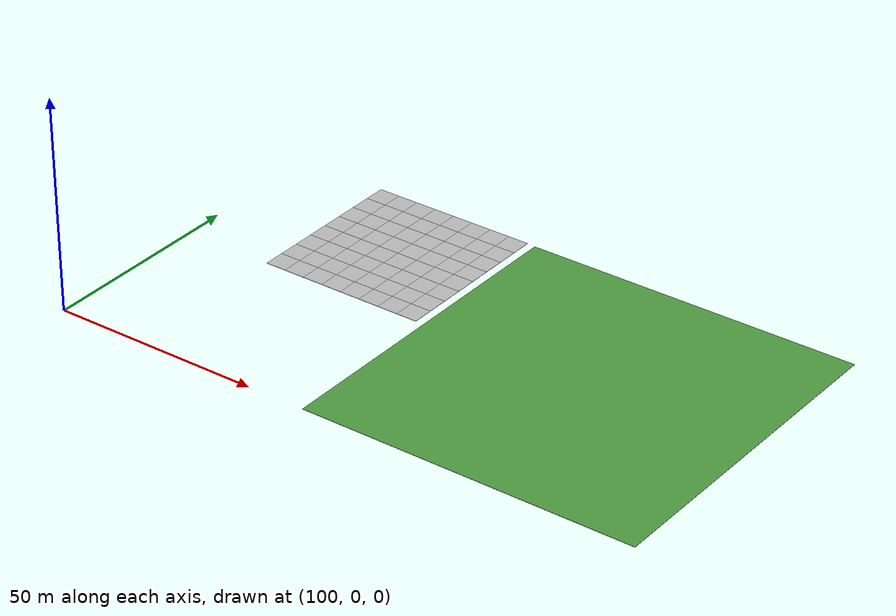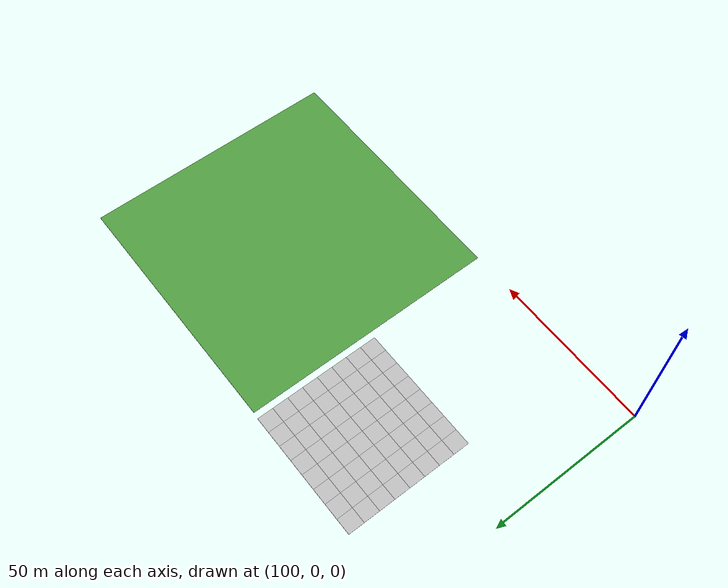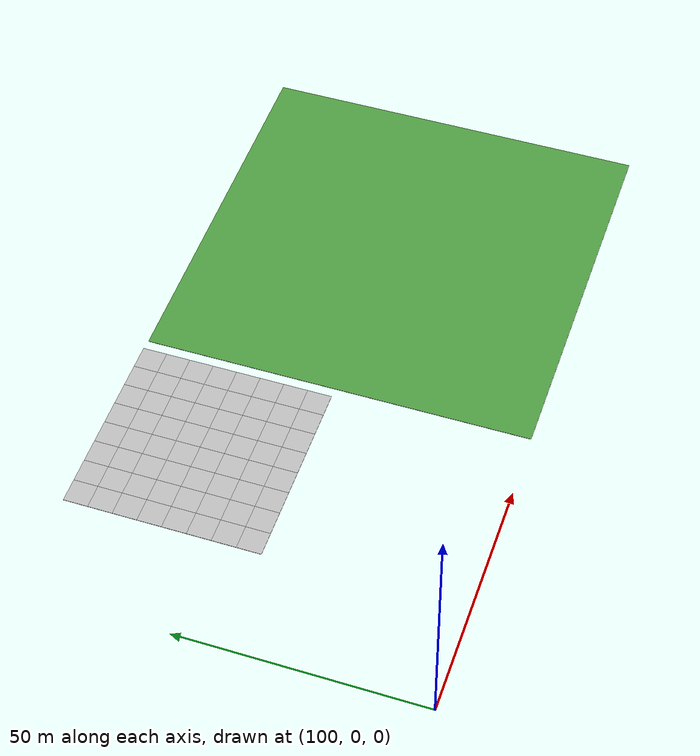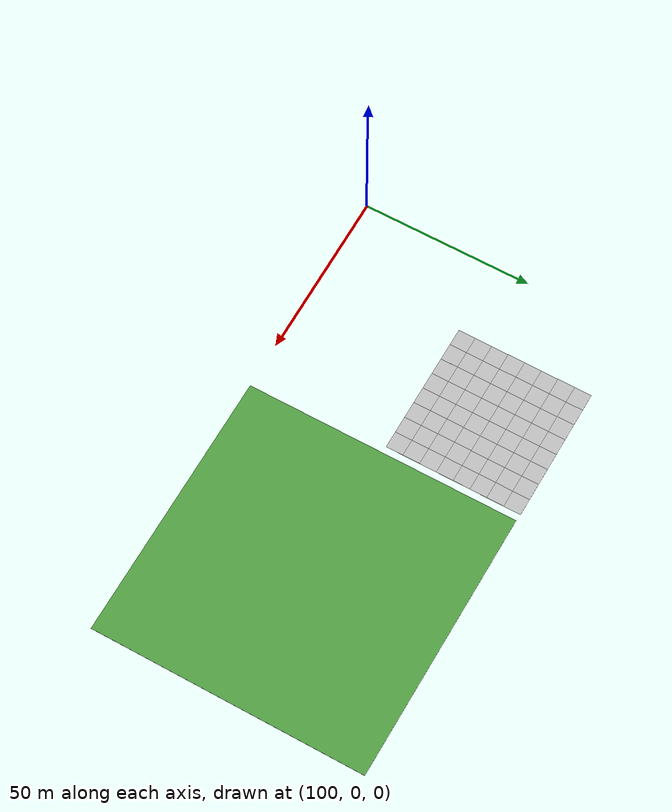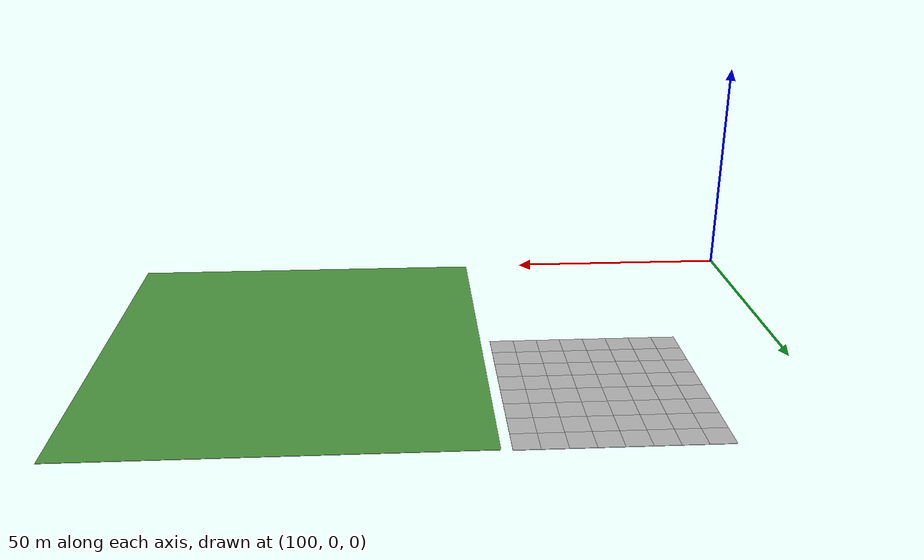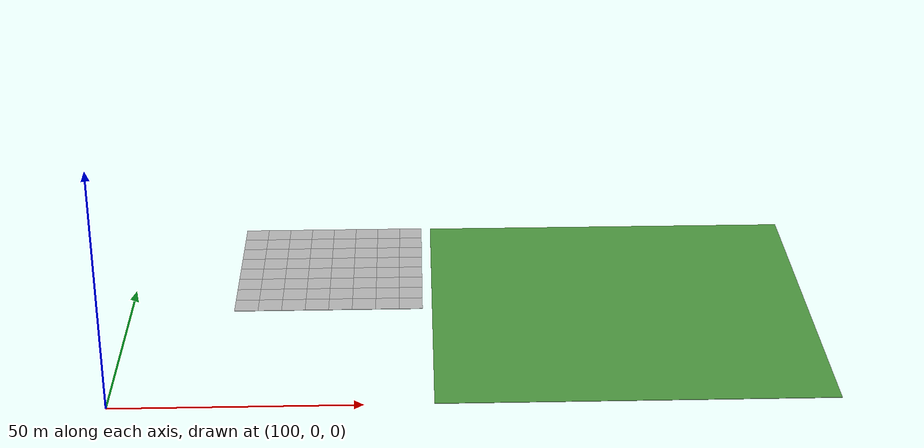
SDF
<sdf version="1.7">
 <world name="default">
  <model name="mud_plane_80x80_6">
   <model name="mud_plane_40x40">
    <model name="mud_plane_20x20">
     <model name="mud_plane">
      <static>1</static>
      <link name="link">
       <collision name="collision"><geometry><box><size>10 10 0.1</size></box></geometry></collision>
       <visual name="visual_1">
        <pose>-2.5 2.5 -0.05 0 -0 0</pose>
        <cast_shadows>0</cast_shadows>
        <geometry><box><size>5 5 0.1</size></box></geometry>
        <material>
         <script>
          <uri>model://mud_plane/materials/scripts</uri>
          <uri>model://mud_plane/materials/textures</uri>
          <name>vrc/mud</name>
         </script>
        </material>
       </visual>
       <visual name="visual_2">
        <pose>2.5 2.5 -0.05 0 -0 0</pose>
        <cast_shadows>0</cast_shadows>
        <geometry><box><size>5 5 0.1</size></box></geometry>
        <material>
         <script>
          <uri>model://mud_plane/materials/scripts</uri>
          <uri>model://mud_plane/materials/textures</uri>
          <name>vrc/mud</name>
         </script>
        </material>
       </visual>
       <visual name="visual_3">
        <pose>2.5 -2.5 -0.05 0 -0 0</pose>
        <cast_shadows>0</cast_shadows>
        <geometry><box><size>5 5 0.1</size></box></geometry>
        <material>
         <script>
          <uri>model://mud_plane/materials/scripts</uri>
          <uri>model://mud_plane/materials/textures</uri>
          <name>vrc/mud</name>
         </script>
        </material>
       </visual>
       <visual name="visual_4">
        <pose>-2.5 -2.5 -0.05 0 -0 0</pose>
        <cast_shadows>0</cast_shadows>
        <geometry><box><size>5 5 0.1</size></box></geometry>
        <material>
         <script>
          <uri>model://mud_plane/materials/scripts</uri>
          <uri>model://mud_plane/materials/textures</uri>
          <name>vrc/mud</name>
         </script>
        </material>
       </visual>
      </link>
      <pose>-4.99986 -4.99991 0 0 -0 0</pose>
     </model>
     <model name="mud_plane_0">
      <static>1</static>
      <link name="link">
       <collision name="collision"><geometry><box><size>10 10 0.1</size></box></geometry></collision>
       <visual name="visual_1">
        <pose>-2.5 2.5 -0.05 0 -0 0</pose>
        <cast_shadows>0</cast_shadows>
        <geometry><box><size>5 5 0.1</size></box></geometry>
        <material>
         <script>
          <uri>model://mud_plane/materials/scripts</uri>
          <uri>model://mud_plane/materials/textures</uri>
          <name>vrc/mud</name>
         </script>
        </material>
       </visual>
       <visual name="visual_2">
        <pose>2.5 2.5 -0.05 0 -0 0</pose>
        <cast_shadows>0</cast_shadows>
        <geometry><box><size>5 5 0.1</size></box></geometry>
        <material>
         <script>
          <uri>model://mud_plane/materials/scripts</uri>
          <uri>model://mud_plane/materials/textures</uri>
          <name>vrc/mud</name>
         </script>
        </material>
       </visual>
       <visual name="visual_3">
        <pose>2.5 -2.5 -0.05 0 -0 0</pose>
        <cast_shadows>0</cast_shadows>
        <geometry><box><size>5 5 0.1</size></box></geometry>
        <material>
         <script>
          <uri>model://mud_plane/materials/scripts</uri>
          <uri>model://mud_plane/materials/textures</uri>
          <name>vrc/mud</name>
         </script>
        </material>
       </visual>
       <visual name="visual_4">
        <pose>-2.5 -2.5 -0.05 0 -0 0</pose>
        <cast_shadows>0</cast_shadows>
        <geometry><box><size>5 5 0.1</size></box></geometry>
        <material>
         <script>
          <uri>model://mud_plane/materials/scripts</uri>
          <uri>model://mud_plane/materials/textures</uri>
          <name>vrc/mud</name>
         </script>
        </material>
       </visual>
      </link>
      <pose>-4.99946 4.99954 0 0 -0 0</pose>
     </model>
     <model name="mud_plane_1">
      <static>1</static>
      <link name="link">
       <collision name="collision"><geometry><box><size>10 10 0.1</size></box></geometry></collision>
       <visual name="visual_1">
        <pose>-2.5 2.5 -0.05 0 -0 0</pose>
        <cast_shadows>0</cast_shadows>
        <geometry><box><size>5 5 0.1</size></box></geometry>
        <material>
         <script>
          <uri>model://mud_plane/materials/scripts</uri>
          <uri>model://mud_plane/materials/textures</uri>
          <name>vrc/mud</name>
         </script>
        </material>
       </visual>
       <visual name="visual_2">
        <pose>2.5 2.5 -0.05 0 -0 0</pose>
        <cast_shadows>0</cast_shadows>
        <geometry><box><size>5 5 0.1</size></box></geometry>
        <material>
         <script>
          <uri>model://mud_plane/materials/scripts</uri>
          <uri>model://mud_plane/materials/textures</uri>
          <name>vrc/mud</name>
         </script>
        </material>
       </visual>
       <visual name="visual_3">
        <pose>2.5 -2.5 -0.05 0 -0 0</pose>
        <cast_shadows>0</cast_shadows>
        <geometry><box><size>5 5 0.1</size></box></geometry>
        <material>
         <script>
          <uri>model://mud_plane/materials/scripts</uri>
          <uri>model://mud_plane/materials/textures</uri>
          <name>vrc/mud</name>
         </script>
        </material>
       </visual>
       <visual name="visual_4">
        <pose>-2.5 -2.5 -0.05 0 -0 0</pose>
        <cast_shadows>0</cast_shadows>
        <geometry><box><size>5 5 0.1</size></box></geometry>
        <material>
         <script>
          <uri>model://mud_plane/materials/scripts</uri>
          <uri>model://mud_plane/materials/textures</uri>
          <name>vrc/mud</name>
         </script>
        </material>
       </visual>
      </link>
      <pose>4.99964 -4.99949 0 0 -0 0</pose>
     </model>
     <model name="mud_plane_2">
      <static>1</static>
      <link name="link">
       <collision name="collision"><geometry><box><size>10 10 0.1</size></box></geometry></collision>
       <visual name="visual_1">
        <pose>-2.5 2.5 -0.05 0 -0 0</pose>
        <cast_shadows>0</cast_shadows>
        <geometry><box><size>5 5 0.1</size></box></geometry>
        <material>
         <script>
          <uri>model://mud_plane/materials/scripts</uri>
          <uri>model://mud_plane/materials/textures</uri>
          <name>vrc/mud</name>
         </script>
        </material>
       </visual>
       <visual name="visual_2">
        <pose>2.5 2.5 -0.05 0 -0 0</pose>
        <cast_shadows>0</cast_shadows>
        <geometry><box><size>5 5 0.1</size></box></geometry>
        <material>
         <script>
          <uri>model://mud_plane/materials/scripts</uri>
          <uri>model://mud_plane/materials/textures</uri>
          <name>vrc/mud</name>
         </script>
        </material>
       </visual>
       <visual name="visual_3">
        <pose>2.5 -2.5 -0.05 0 -0 0</pose>
        <cast_shadows>0</cast_shadows>
        <geometry><box><size>5 5 0.1</size></box></geometry>
        <material>
         <script>
          <uri>model://mud_plane/materials/scripts</uri>
          <uri>model://mud_plane/materials/textures</uri>
          <name>vrc/mud</name>
         </script>
        </material>
       </visual>
       <visual name="visual_4">
        <pose>-2.5 -2.5 -0.05 0 -0 0</pose>
        <cast_shadows>0</cast_shadows>
        <geometry><box><size>5 5 0.1</size></box></geometry>
        <material>
         <script>
          <uri>model://mud_plane/materials/scripts</uri>
          <uri>model://mud_plane/materials/textures</uri>
          <name>vrc/mud</name>
         </script>
        </material>
       </visual>
      </link>
      <pose>4.99967 4.99986 0 0 -0 0</pose>
     </model>
     <static>0</static>
     <pose>-9.99895 9.99843 0 0 -0 0</pose>
    </model>
    <model name="mud_plane_20x20_0">
     <model name="mud_plane">
      <static>1</static>
      <link name="link">
       <collision name="collision"><geometry><box><size>10 10 0.1</size></box></geometry></collision>
       <visual name="visual_1">
        <pose>-2.5 2.5 -0.05 0 -0 0</pose>
        <cast_shadows>0</cast_shadows>
        <geometry><box><size>5 5 0.1</size></box></geometry>
        <material>
         <script>
          <uri>model://mud_plane/materials/scripts</uri>
          <uri>model://mud_plane/materials/textures</uri>
          <name>vrc/mud</name>
         </script>
        </material>
       </visual>
       <visual name="visual_2">
        <pose>2.5 2.5 -0.05 0 -0 0</pose>
        <cast_shadows>0</cast_shadows>
        <geometry><box><size>5 5 0.1</size></box></geometry>
        <material>
         <script>
          <uri>model://mud_plane/materials/scripts</uri>
          <uri>model://mud_plane/materials/textures</uri>
          <name>vrc/mud</name>
         </script>
        </material>
       </visual>
       <visual name="visual_3">
        <pose>2.5 -2.5 -0.05 0 -0 0</pose>
        <cast_shadows>0</cast_shadows>
        <geometry><box><size>5 5 0.1</size></box></geometry>
        <material>
         <script>
          <uri>model://mud_plane/materials/scripts</uri>
          <uri>model://mud_plane/materials/textures</uri>
          <name>vrc/mud</name>
         </script>
        </material>
       </visual>
       <visual name="visual_4">
        <pose>-2.5 -2.5 -0.05 0 -0 0</pose>
        <cast_shadows>0</cast_shadows>
        <geometry><box><size>5 5 0.1</size></box></geometry>
        <material>
         <script>
          <uri>model://mud_plane/materials/scripts</uri>
          <uri>model://mud_plane/materials/textures</uri>
          <name>vrc/mud</name>
         </script>
        </material>
       </visual>
      </link>
      <pose>-4.99986 -4.99991 0 0 -0 0</pose>
     </model>
     <model name="mud_plane_0">
      <static>1</static>
      <link name="link">
       <collision name="collision"><geometry><box><size>10 10 0.1</size></box></geometry></collision>
       <visual name="visual_1">
        <pose>-2.5 2.5 -0.05 0 -0 0</pose>
        <cast_shadows>0</cast_shadows>
        <geometry><box><size>5 5 0.1</size></box></geometry>
        <material>
         <script>
          <uri>model://mud_plane/materials/scripts</uri>
          <uri>model://mud_plane/materials/textures</uri>
          <name>vrc/mud</name>
         </script>
        </material>
       </visual>
       <visual name="visual_2">
        <pose>2.5 2.5 -0.05 0 -0 0</pose>
        <cast_shadows>0</cast_shadows>
        <geometry><box><size>5 5 0.1</size></box></geometry>
        <material>
         <script>
          <uri>model://mud_plane/materials/scripts</uri>
          <uri>model://mud_plane/materials/textures</uri>
          <name>vrc/mud</name>
         </script>
        </material>
       </visual>
       <visual name="visual_3">
        <pose>2.5 -2.5 -0.05 0 -0 0</pose>
        <cast_shadows>0</cast_shadows>
        <geometry><box><size>5 5 0.1</size></box></geometry>
        <material>
         <script>
          <uri>model://mud_plane/materials/scripts</uri>
          <uri>model://mud_plane/materials/textures</uri>
          <name>vrc/mud</name>
         </script>
        </material>
       </visual>
       <visual name="visual_4">
        <pose>-2.5 -2.5 -0.05 0 -0 0</pose>
        <cast_shadows>0</cast_shadows>
        <geometry><box><size>5 5 0.1</size></box></geometry>
        <material>
         <script>
          <uri>model://mud_plane/materials/scripts</uri>
          <uri>model://mud_plane/materials/textures</uri>
          <name>vrc/mud</name>
         </script>
        </material>
       </visual>
      </link>
      <pose>-4.99946 4.99954 0 0 -0 0</pose>
     </model>
     <model name="mud_plane_1">
      <static>1</static>
      <link name="link">
       <collision name="collision"><geometry><box><size>10 10 0.1</size></box></geometry></collision>
       <visual name="visual_1">
        <pose>-2.5 2.5 -0.05 0 -0 0</pose>
        <cast_shadows>0</cast_shadows>
        <geometry><box><size>5 5 0.1</size></box></geometry>
        <material>
         <script>
          <uri>model://mud_plane/materials/scripts</uri>
          <uri>model://mud_plane/materials/textures</uri>
          <name>vrc/mud</name>
         </script>
        </material>
       </visual>
       <visual name="visual_2">
        <pose>2.5 2.5 -0.05 0 -0 0</pose>
        <cast_shadows>0</cast_shadows>
        <geometry><box><size>5 5 0.1</size></box></geometry>
        <material>
         <script>
          <uri>model://mud_plane/materials/scripts</uri>
          <uri>model://mud_plane/materials/textures</uri>
          <name>vrc/mud</name>
         </script>
        </material>
       </visual>
       <visual name="visual_3">
        <pose>2.5 -2.5 -0.05 0 -0 0</pose>
        <cast_shadows>0</cast_shadows>
        <geometry><box><size>5 5 0.1</size></box></geometry>
        <material>
         <script>
          <uri>model://mud_plane/materials/scripts</uri>
          <uri>model://mud_plane/materials/textures</uri>
          <name>vrc/mud</name>
         </script>
        </material>
       </visual>
       <visual name="visual_4">
        <pose>-2.5 -2.5 -0.05 0 -0 0</pose>
        <cast_shadows>0</cast_shadows>
        <geometry><box><size>5 5 0.1</size></box></geometry>
        <material>
         <script>
          <uri>model://mud_plane/materials/scripts</uri>
          <uri>model://mud_plane/materials/textures</uri>
          <name>vrc/mud</name>
         </script>
        </material>
       </visual>
      </link>
      <pose>4.99964 -4.99949 0 0 -0 0</pose>
     </model>
     <model name="mud_plane_2">
      <static>1</static>
      <link name="link">
       <collision name="collision"><geometry><box><size>10 10 0.1</size></box></geometry></collision>
       <visual name="visual_1">
        <pose>-2.5 2.5 -0.05 0 -0 0</pose>
        <cast_shadows>0</cast_shadows>
        <geometry><box><size>5 5 0.1</size></box></geometry>
        <material>
         <script>
          <uri>model://mud_plane/materials/scripts</uri>
          <uri>model://mud_plane/materials/textures</uri>
          <name>vrc/mud</name>
         </script>
        </material>
       </visual>
       <visual name="visual_2">
        <pose>2.5 2.5 -0.05 0 -0 0</pose>
        <cast_shadows>0</cast_shadows>
        <geometry><box><size>5 5 0.1</size></box></geometry>
        <material>
         <script>
          <uri>model://mud_plane/materials/scripts</uri>
          <uri>model://mud_plane/materials/textures</uri>
          <name>vrc/mud</name>
         </script>
        </material>
       </visual>
       <visual name="visual_3">
        <pose>2.5 -2.5 -0.05 0 -0 0</pose>
        <cast_shadows>0</cast_shadows>
        <geometry><box><size>5 5 0.1</size></box></geometry>
        <material>
         <script>
          <uri>model://mud_plane/materials/scripts</uri>
          <uri>model://mud_plane/materials/textures</uri>
          <name>vrc/mud</name>
         </script>
        </material>
       </visual>
       <visual name="visual_4">
        <pose>-2.5 -2.5 -0.05 0 -0 0</pose>
        <cast_shadows>0</cast_shadows>
        <geometry><box><size>5 5 0.1</size></box></geometry>
        <material>
         <script>
          <uri>model://mud_plane/materials/scripts</uri>
          <uri>model://mud_plane/materials/textures</uri>
          <name>vrc/mud</name>
         </script>
        </material>
       </visual>
      </link>
      <pose>4.99967 4.99986 0 0 -0 0</pose>
     </model>
     <static>0</static>
     <pose>9.99933 9.9997 0 0 -0 0</pose>
    </model>
    <model name="mud_plane_20x20_1">
     <model name="mud_plane">
      <static>1</static>
      <link name="link">
       <collision name="collision"><geometry><box><size>10 10 0.1</size></box></geometry></collision>
       <visual name="visual_1">
        <pose>-2.5 2.5 -0.05 0 -0 0</pose>
        <cast_shadows>0</cast_shadows>
        <geometry><box><size>5 5 0.1</size></box></geometry>
        <material>
         <script>
          <uri>model://mud_plane/materials/scripts</uri>
          <uri>model://mud_plane/materials/textures</uri>
          <name>vrc/mud</name>
         </script>
        </material>
       </visual>
       <visual name="visual_2">
        <pose>2.5 2.5 -0.05 0 -0 0</pose>
        <cast_shadows>0</cast_shadows>
        <geometry><box><size>5 5 0.1</size></box></geometry>
        <material>
         <script>
          <uri>model://mud_plane/materials/scripts</uri>
          <uri>model://mud_plane/materials/textures</uri>
          <name>vrc/mud</name>
         </script>
        </material>
       </visual>
       <visual name="visual_3">
        <pose>2.5 -2.5 -0.05 0 -0 0</pose>
        <cast_shadows>0</cast_shadows>
        <geometry><box><size>5 5 0.1</size></box></geometry>
        <material>
         <script>
          <uri>model://mud_plane/materials/scripts</uri>
          <uri>model://mud_plane/materials/textures</uri>
          <name>vrc/mud</name>
         </script>
        </material>
       </visual>
       <visual name="visual_4">
        <pose>-2.5 -2.5 -0.05 0 -0 0</pose>
        <cast_shadows>0</cast_shadows>
        <geometry><box><size>5 5 0.1</size></box></geometry>
        <material>
         <script>
          <uri>model://mud_plane/materials/scripts</uri>
          <uri>model://mud_plane/materials/textures</uri>
          <name>vrc/mud</name>
         </script>
        </material>
       </visual>
      </link>
      <pose>-4.99986 -4.99991 0 0 -0 0</pose>
     </model>
     <model name="mud_plane_0">
      <static>1</static>
      <link name="link">
       <collision name="collision"><geometry><box><size>10 10 0.1</size></box></geometry></collision>
       <visual name="visual_1">
        <pose>-2.5 2.5 -0.05 0 -0 0</pose>
        <cast_shadows>0</cast_shadows>
        <geometry><box><size>5 5 0.1</size></box></geometry>
        <material>
         <script>
          <uri>model://mud_plane/materials/scripts</uri>
          <uri>model://mud_plane/materials/textures</uri>
          <name>vrc/mud</name>
         </script>
        </material>
       </visual>
       <visual name="visual_2">
        <pose>2.5 2.5 -0.05 0 -0 0</pose>
        <cast_shadows>0</cast_shadows>
        <geometry><box><size>5 5 0.1</size></box></geometry>
        <material>
         <script>
          <uri>model://mud_plane/materials/scripts</uri>
          <uri>model://mud_plane/materials/textures</uri>
          <name>vrc/mud</name>
         </script>
        </material>
       </visual>
       <visual name="visual_3">
        <pose>2.5 -2.5 -0.05 0 -0 0</pose>
        <cast_shadows>0</cast_shadows>
        <geometry><box><size>5 5 0.1</size></box></geometry>
        <material>
         <script>
          <uri>model://mud_plane/materials/scripts</uri>
          <uri>model://mud_plane/materials/textures</uri>
          <name>vrc/mud</name>
         </script>
        </material>
       </visual>
       <visual name="visual_4">
        <pose>-2.5 -2.5 -0.05 0 -0 0</pose>
        <cast_shadows>0</cast_shadows>
        <geometry><box><size>5 5 0.1</size></box></geometry>
        <material>
         <script>
          <uri>model://mud_plane/materials/scripts</uri>
          <uri>model://mud_plane/materials/textures</uri>
          <name>vrc/mud</name>
         </script>
        </material>
       </visual>
      </link>
      <pose>-4.99946 4.99954 0 0 -0 0</pose>
     </model>
     <model name="mud_plane_1">
      <static>1</static>
      <link name="link">
       <collision name="collision"><geometry><box><size>10 10 0.1</size></box></geometry></collision>
       <visual name="visual_1">
        <pose>-2.5 2.5 -0.05 0 -0 0</pose>
        <cast_shadows>0</cast_shadows>
        <geometry><box><size>5 5 0.1</size></box></geometry>
        <material>
         <script>
          <uri>model://mud_plane/materials/scripts</uri>
          <uri>model://mud_plane/materials/textures</uri>
          <name>vrc/mud</name>
         </script>
        </material>
       </visual>
       <visual name="visual_2">
        <pose>2.5 2.5 -0.05 0 -0 0</pose>
        <cast_shadows>0</cast_shadows>
        <geometry><box><size>5 5 0.1</size></box></geometry>
        <material>
         <script>
          <uri>model://mud_plane/materials/scripts</uri>
          <uri>model://mud_plane/materials/textures</uri>
          <name>vrc/mud</name>
         </script>
        </material>
       </visual>
       <visual name="visual_3">
        <pose>2.5 -2.5 -0.05 0 -0 0</pose>
        <cast_shadows>0</cast_shadows>
        <geometry><box><size>5 5 0.1</size></box></geometry>
        <material>
         <script>
          <uri>model://mud_plane/materials/scripts</uri>
          <uri>model://mud_plane/materials/textures</uri>
          <name>vrc/mud</name>
         </script>
        </material>
       </visual>
       <visual name="visual_4">
        <pose>-2.5 -2.5 -0.05 0 -0 0</pose>
        <cast_shadows>0</cast_shadows>
        <geometry><box><size>5 5 0.1</size></box></geometry>
        <material>
         <script>
          <uri>model://mud_plane/materials/scripts</uri>
          <uri>model://mud_plane/materials/textures</uri>
          <name>vrc/mud</name>
         </script>
        </material>
       </visual>
      </link>
      <pose>4.99964 -4.99949 0 0 -0 0</pose>
     </model>
     <model name="mud_plane_2">
      <static>1</static>
      <link name="link">
       <collision name="collision"><geometry><box><size>10 10 0.1</size></box></geometry></collision>
       <visual name="visual_1">
        <pose>-2.5 2.5 -0.05 0 -0 0</pose>
        <cast_shadows>0</cast_shadows>
        <geometry><box><size>5 5 0.1</size></box></geometry>
        <material>
         <script>
          <uri>model://mud_plane/materials/scripts</uri>
          <uri>model://mud_plane/materials/textures</uri>
          <name>vrc/mud</name>
         </script>
        </material>
       </visual>
       <visual name="visual_2">
        <pose>2.5 2.5 -0.05 0 -0 0</pose>
        <cast_shadows>0</cast_shadows>
        <geometry><box><size>5 5 0.1</size></box></geometry>
        <material>
         <script>
          <uri>model://mud_plane/materials/scripts</uri>
          <uri>model://mud_plane/materials/textures</uri>
          <name>vrc/mud</name>
         </script>
        </material>
       </visual>
       <visual name="visual_3">
        <pose>2.5 -2.5 -0.05 0 -0 0</pose>
        <cast_shadows>0</cast_shadows>
        <geometry><box><size>5 5 0.1</size></box></geometry>
        <material>
         <script>
          <uri>model://mud_plane/materials/scripts</uri>
          <uri>model://mud_plane/materials/textures</uri>
          <name>vrc/mud</name>
         </script>
        </material>
       </visual>
       <visual name="visual_4">
        <pose>-2.5 -2.5 -0.05 0 -0 0</pose>
        <cast_shadows>0</cast_shadows>
        <geometry><box><size>5 5 0.1</size></box></geometry>
        <material>
         <script>
          <uri>model://mud_plane/materials/scripts</uri>
          <uri>model://mud_plane/materials/textures</uri>
          <name>vrc/mud</name>
         </script>
        </material>
       </visual>
      </link>
      <pose>4.99967 4.99986 0 0 -0 0</pose>
     </model>
     <static>0</static>
     <pose>9.9993 -9.99877 0 0 -0 0</pose>
    </model>
    <model name="mud_plane_20x20_2">
     <model name="mud_plane">
      <static>1</static>
      <link name="link">
       <collision name="collision"><geometry><box><size>10 10 0.1</size></box></geometry></collision>
       <visual name="visual_1">
        <pose>-2.5 2.5 -0.05 0 -0 0</pose>
        <cast_shadows>0</cast_shadows>
        <geometry><box><size>5 5 0.1</size></box></geometry>
        <material>
         <script>
          <uri>model://mud_plane/materials/scripts</uri>
          <uri>model://mud_plane/materials/textures</uri>
          <name>vrc/mud</name>
         </script>
        </material>
       </visual>
       <visual name="visual_2">
        <pose>2.5 2.5 -0.05 0 -0 0</pose>
        <cast_shadows>0</cast_shadows>
        <geometry><box><size>5 5 0.1</size></box></geometry>
        <material>
         <script>
          <uri>model://mud_plane/materials/scripts</uri>
          <uri>model://mud_plane/materials/textures</uri>
          <name>vrc/mud</name>
         </script>
        </material>
       </visual>
       <visual name="visual_3">
        <pose>2.5 -2.5 -0.05 0 -0 0</pose>
        <cast_shadows>0</cast_shadows>
        <geometry><box><size>5 5 0.1</size></box></geometry>
        <material>
         <script>
          <uri>model://mud_plane/materials/scripts</uri>
          <uri>model://mud_plane/materials/textures</uri>
          <name>vrc/mud</name>
         </script>
        </material>
       </visual>
       <visual name="visual_4">
        <pose>-2.5 -2.5 -0.05 0 -0 0</pose>
        <cast_shadows>0</cast_shadows>
        <geometry><box><size>5 5 0.1</size></box></geometry>
        <material>
         <script>
          <uri>model://mud_plane/materials/scripts</uri>
          <uri>model://mud_plane/materials/textures</uri>
          <name>vrc/mud</name>
         </script>
        </material>
       </visual>
      </link>
      <pose>-4.99986 -4.99991 0 0 -0 0</pose>
     </model>
     <model name="mud_plane_0">
      <static>1</static>
      <link name="link">
       <collision name="collision"><geometry><box><size>10 10 0.1</size></box></geometry></collision>
       <visual name="visual_1">
        <pose>-2.5 2.5 -0.05 0 -0 0</pose>
        <cast_shadows>0</cast_shadows>
        <geometry><box><size>5 5 0.1</size></box></geometry>
        <material>
         <script>
          <uri>model://mud_plane/materials/scripts</uri>
          <uri>model://mud_plane/materials/textures</uri>
          <name>vrc/mud</name>
         </script>
        </material>
       </visual>
       <visual name="visual_2">
        <pose>2.5 2.5 -0.05 0 -0 0</pose>
        <cast_shadows>0</cast_shadows>
        <geometry><box><size>5 5 0.1</size></box></geometry>
        <material>
         <script>
          <uri>model://mud_plane/materials/scripts</uri>
          <uri>model://mud_plane/materials/textures</uri>
          <name>vrc/mud</name>
         </script>
        </material>
       </visual>
       <visual name="visual_3">
        <pose>2.5 -2.5 -0.05 0 -0 0</pose>
        <cast_shadows>0</cast_shadows>
        <geometry><box><size>5 5 0.1</size></box></geometry>
        <material>
         <script>
          <uri>model://mud_plane/materials/scripts</uri>
          <uri>model://mud_plane/materials/textures</uri>
          <name>vrc/mud</name>
         </script>
        </material>
       </visual>
       <visual name="visual_4">
        <pose>-2.5 -2.5 -0.05 0 -0 0</pose>
        <cast_shadows>0</cast_shadows>
        <geometry><box><size>5 5 0.1</size></box></geometry>
        <material>
         <script>
          <uri>model://mud_plane/materials/scripts</uri>
          <uri>model://mud_plane/materials/textures</uri>
          <name>vrc/mud</name>
         </script>
        </material>
       </visual>
      </link>
      <pose>-4.99946 4.99954 0 0 -0 0</pose>
     </model>
     <model name="mud_plane_1">
      <static>1</static>
      <link name="link">
       <collision name="collision"><geometry><box><size>10 10 0.1</size></box></geometry></collision>
       <visual name="visual_1">
        <pose>-2.5 2.5 -0.05 0 -0 0</pose>
        <cast_shadows>0</cast_shadows>
        <geometry><box><size>5 5 0.1</size></box></geometry>
        <material>
         <script>
          <uri>model://mud_plane/materials/scripts</uri>
          <uri>model://mud_plane/materials/textures</uri>
          <name>vrc/mud</name>
         </script>
        </material>
       </visual>
       <visual name="visual_2">
        <pose>2.5 2.5 -0.05 0 -0 0</pose>
        <cast_shadows>0</cast_shadows>
        <geometry><box><size>5 5 0.1</size></box></geometry>
        <material>
         <script>
          <uri>model://mud_plane/materials/scripts</uri>
          <uri>model://mud_plane/materials/textures</uri>
          <name>vrc/mud</name>
         </script>
        </material>
       </visual>
       <visual name="visual_3">
        <pose>2.5 -2.5 -0.05 0 -0 0</pose>
        <cast_shadows>0</cast_shadows>
        <geometry><box><size>5 5 0.1</size></box></geometry>
        <material>
         <script>
          <uri>model://mud_plane/materials/scripts</uri>
          <uri>model://mud_plane/materials/textures</uri>
          <name>vrc/mud</name>
         </script>
        </material>
       </visual>
       <visual name="visual_4">
        <pose>-2.5 -2.5 -0.05 0 -0 0</pose>
        <cast_shadows>0</cast_shadows>
        <geometry><box><size>5 5 0.1</size></box></geometry>
        <material>
         <script>
          <uri>model://mud_plane/materials/scripts</uri>
          <uri>model://mud_plane/materials/textures</uri>
          <name>vrc/mud</name>
         </script>
        </material>
       </visual>
      </link>
      <pose>4.99964 -4.99949 0 0 -0 0</pose>
     </model>
     <model name="mud_plane_2">
      <static>1</static>
      <link name="link">
       <collision name="collision"><geometry><box><size>10 10 0.1</size></box></geometry></collision>
       <visual name="visual_1">
        <pose>-2.5 2.5 -0.05 0 -0 0</pose>
        <cast_shadows>0</cast_shadows>
        <geometry><box><size>5 5 0.1</size></box></geometry>
        <material>
         <script>
          <uri>model://mud_plane/materials/scripts</uri>
          <uri>model://mud_plane/materials/textures</uri>
          <name>vrc/mud</name>
         </script>
        </material>
       </visual>
       <visual name="visual_2">
        <pose>2.5 2.5 -0.05 0 -0 0</pose>
        <cast_shadows>0</cast_shadows>
        <geometry><box><size>5 5 0.1</size></box></geometry>
        <material>
         <script>
          <uri>model://mud_plane/materials/scripts</uri>
          <uri>model://mud_plane/materials/textures</uri>
          <name>vrc/mud</name>
         </script>
        </material>
       </visual>
       <visual name="visual_3">
        <pose>2.5 -2.5 -0.05 0 -0 0</pose>
        <cast_shadows>0</cast_shadows>
        <geometry><box><size>5 5 0.1</size></box></geometry>
        <material>
         <script>
          <uri>model://mud_plane/materials/scripts</uri>
          <uri>model://mud_plane/materials/textures</uri>
          <name>vrc/mud</name>
         </script>
        </material>
       </visual>
       <visual name="visual_4">
        <pose>-2.5 -2.5 -0.05 0 -0 0</pose>
        <cast_shadows>0</cast_shadows>
        <geometry><box><size>5 5 0.1</size></box></geometry>
        <material>
         <script>
          <uri>model://mud_plane/materials/scripts</uri>
          <uri>model://mud_plane/materials/textures</uri>
          <name>vrc/mud</name>
         </script>
        </material>
       </visual>
      </link>
      <pose>4.99967 4.99986 0 0 -0 0</pose>
     </model>
     <static>0</static>
     <pose>-9.99969 -9.99935 0 0 -0 0</pose>
    </model>
    <static>0</static>
    <pose>19.9986 19.9995 0 0 -0 0</pose>
   </model>
   <static>0</static>
   <pose>121.689 40.3973 0 0 -0 0</pose>
  </model>
  <model name="grass_plane_80x80_3">
   <pose>203.732 40.1713 -0.05 0 -0 0</pose>
   <static>1</static>
   <link name="link">
    <collision name="collision"><geometry><box><size>80 80 0.1</size></box></geometry></collision>
    <visual name="grass">
     <cast_shadows>0</cast_shadows>
     <geometry><box><size>80 80 0.1</size></box></geometry>
     <material>
      <script><uri>file://media/materials/scripts/gazebo.material</uri><name>Gazebo/Grass</name></script>
     </material>
    </visual>
   </link>
  </model>
 </world>
</sdf>
